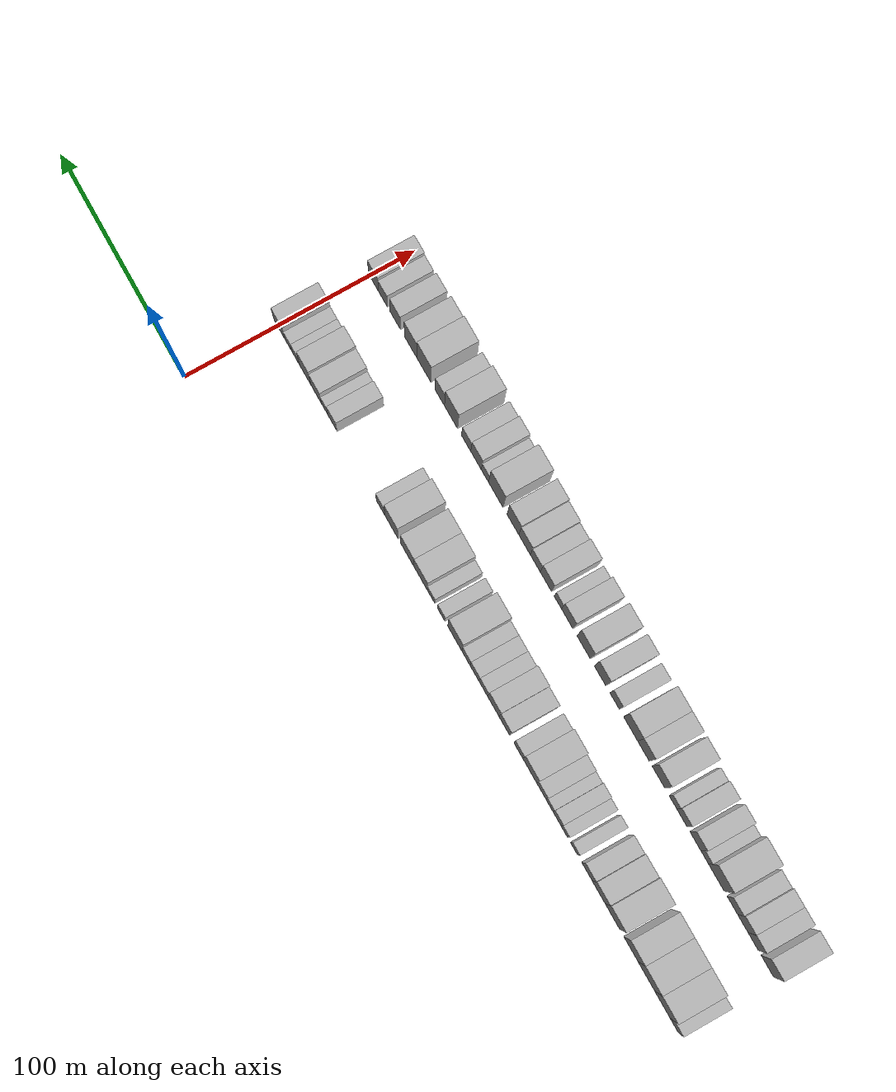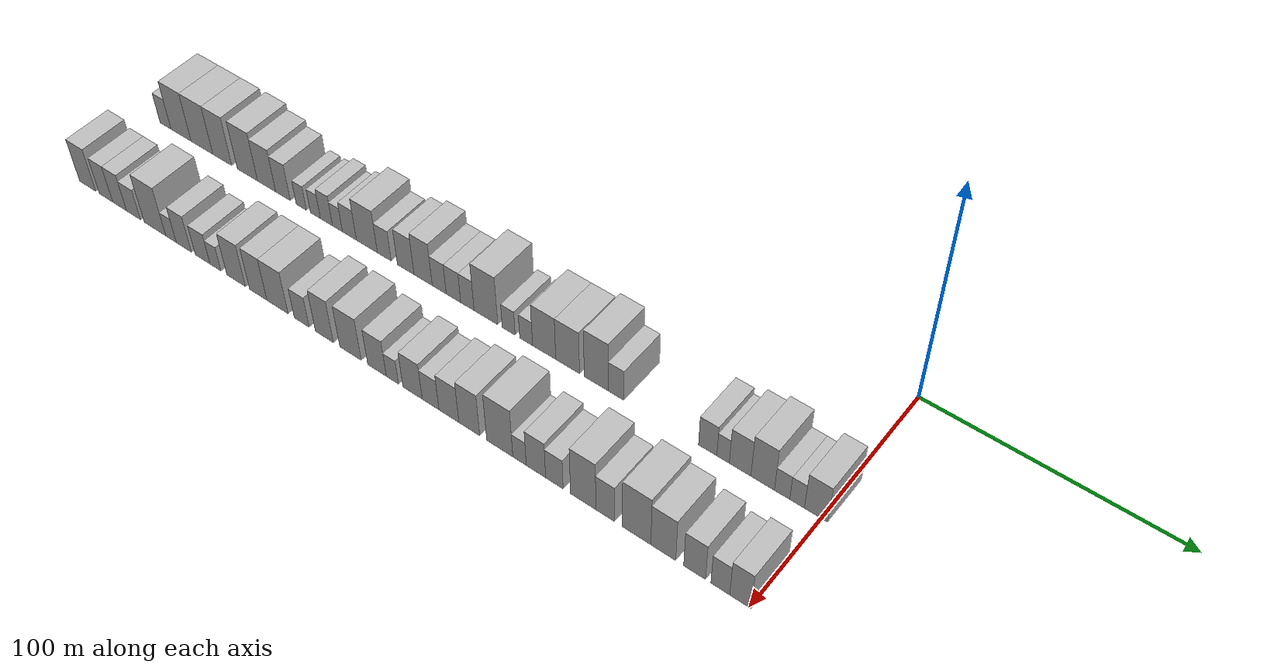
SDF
<sdf version="1.6">
 <world name="default">
  <model name="building_1">
   <static>1</static>
   <pose>50.0000 -296.9921 0 0.000000 0.000000 0.000000</pose>
   <link name="link">
    <pose>0 0 7.50 0 0 0</pose>
    <collision name="collision"><geometry><box><size>20.0000 6.0158 15.0000</size></box></geometry></collision>
    <visual name="visual">
     <cast_shadows>0</cast_shadows>
     <geometry><box><size>20.0000 6.0158 15.0000</size></box></geometry>
     <material>
      <script>
       <uri>model://HANNAS_wall/materials/scripts</uri>
       <uri>model://HANNAS_wall/materials/textures</uri>
       <name>vrc/HANNAS_wall</name>
      </script>
     </material>
    </visual>
   </link>
  </model>
  <model name="building_2">
   <static>1</static>
   <pose>50.0000 -288.4658 0 0.000000 0.000000 0.000000</pose>
   <link name="link">
    <pose>0 0 12.00 0 0 0</pose>
    <collision name="collision"><geometry><box><size>20.0000 11.0369 24.0000</size></box></geometry></collision>
    <visual name="visual">
     <cast_shadows>0</cast_shadows>
     <geometry><box><size>20.0000 11.0369 24.0000</size></box></geometry>
     <material>
      <script>
       <uri>model://HANNAS_wall/materials/scripts</uri>
       <uri>model://HANNAS_wall/materials/textures</uri>
       <name>vrc/HANNAS_wall</name>
      </script>
     </material>
    </visual>
   </link>
  </model>
  <model name="building_3">
   <static>1</static>
   <pose>50.0000 -277.0403 0 0.000000 0.000000 0.000000</pose>
   <link name="link">
    <pose>0 0 12.00 0 0 0</pose>
    <collision name="collision"><geometry><box><size>20.0000 11.8140 24.0000</size></box></geometry></collision>
    <visual name="visual">
     <cast_shadows>0</cast_shadows>
     <geometry><box><size>20.0000 11.8140 24.0000</size></box></geometry>
     <material>
      <script>
       <uri>model://HANNAS_wall/materials/scripts</uri>
       <uri>model://HANNAS_wall/materials/textures</uri>
       <name>vrc/HANNAS_wall</name>
      </script>
     </material>
    </visual>
   </link>
  </model>
  <model name="building_4">
   <static>1</static>
   <pose>50.0000 -266.0518 0 0.000000 0.000000 0.000000</pose>
   <link name="link">
    <pose>0 0 12.00 0 0 0</pose>
    <collision name="collision"><geometry><box><size>20.0000 10.1629 24.0000</size></box></geometry></collision>
    <visual name="visual">
     <cast_shadows>0</cast_shadows>
     <geometry><box><size>20.0000 10.1629 24.0000</size></box></geometry>
     <material>
      <script>
       <uri>model://HANNAS_wall/materials/scripts</uri>
       <uri>model://HANNAS_wall/materials/textures</uri>
       <name>vrc/HANNAS_wall</name>
      </script>
     </material>
    </visual>
   </link>
  </model>
  <model name="building_5">
   <static>1</static>
   <pose>50.0000 -252.6751 0 0.000000 0.000000 0.000000</pose>
   <link name="link">
    <pose>0 0 12.00 0 0 0</pose>
    <collision name="collision"><geometry><box><size>20.0000 10.5906 24.0000</size></box></geometry></collision>
    <visual name="visual">
     <cast_shadows>0</cast_shadows>
     <geometry><box><size>20.0000 10.5906 24.0000</size></box></geometry>
     <material>
      <script>
       <uri>model://HANNAS_wall/materials/scripts</uri>
       <uri>model://HANNAS_wall/materials/textures</uri>
       <name>vrc/HANNAS_wall</name>
      </script>
     </material>
    </visual>
   </link>
  </model>
  <model name="building_6">
   <static>1</static>
   <pose>50.0000 -242.6532 0 0.000000 0.000000 0.000000</pose>
   <link name="link">
    <pose>0 0 10.50 0 0 0</pose>
    <collision name="collision"><geometry><box><size>20.0000 9.4532 21.0000</size></box></geometry></collision>
    <visual name="visual">
     <cast_shadows>0</cast_shadows>
     <geometry><box><size>20.0000 9.4532 21.0000</size></box></geometry>
     <material>
      <script>
       <uri>model://HANNAS_wall/materials/scripts</uri>
       <uri>model://HANNAS_wall/materials/textures</uri>
       <name>vrc/HANNAS_wall</name>
      </script>
     </material>
    </visual>
   </link>
  </model>
  <model name="building_7">
   <static>1</static>
   <pose>50.0000 -234.1724 0 0.000000 0.000000 0.000000</pose>
   <link name="link">
    <pose>0 0 9.00 0 0 0</pose>
    <collision name="collision"><geometry><box><size>20.0000 7.5082 18.0000</size></box></geometry></collision>
    <visual name="visual">
     <cast_shadows>0</cast_shadows>
     <geometry><box><size>20.0000 7.5082 18.0000</size></box></geometry>
     <material>
      <script>
       <uri>model://HANNAS_wall/materials/scripts</uri>
       <uri>model://HANNAS_wall/materials/textures</uri>
       <name>vrc/HANNAS_wall</name>
      </script>
     </material>
    </visual>
   </link>
  </model>
  <model name="building_8">
   <static>1</static>
   <pose>50.0000 -224.8168 0 0.000000 0.000000 0.000000</pose>
   <link name="link">
    <pose>0 0 6.00 0 0 0</pose>
    <collision name="collision"><geometry><box><size>20.0000 5.2030 12.0000</size></box></geometry></collision>
    <visual name="visual">
     <cast_shadows>0</cast_shadows>
     <geometry><box><size>20.0000 5.2030 12.0000</size></box></geometry>
     <material>
      <script>
       <uri>model://HANNAS_wall/materials/scripts</uri>
       <uri>model://HANNAS_wall/materials/textures</uri>
       <name>vrc/HANNAS_wall</name>
      </script>
     </material>
    </visual>
   </link>
  </model>
  <model name="building_9">
   <static>1</static>
   <pose>50.0000 -217.7098 0 0.000000 0.000000 0.000000</pose>
   <link name="link">
    <pose>0 0 6.00 0 0 0</pose>
    <collision name="collision"><geometry><box><size>20.0000 5.0111 12.0000</size></box></geometry></collision>
    <visual name="visual">
     <cast_shadows>0</cast_shadows>
     <geometry><box><size>20.0000 5.0111 12.0000</size></box></geometry>
     <material>
      <script>
       <uri>model://HANNAS_wall/materials/scripts</uri>
       <uri>model://HANNAS_wall/materials/textures</uri>
       <name>vrc/HANNAS_wall</name>
      </script>
     </material>
    </visual>
   </link>
  </model>
  <model name="building_10">
   <static>1</static>
   <pose>50.0000 -212.1757 0 0.000000 0.000000 0.000000</pose>
   <link name="link">
    <pose>0 0 7.50 0 0 0</pose>
    <collision name="collision"><geometry><box><size>20.0000 6.0572 15.0000</size></box></geometry></collision>
    <visual name="visual">
     <cast_shadows>0</cast_shadows>
     <geometry><box><size>20.0000 6.0572 15.0000</size></box></geometry>
     <material>
      <script>
       <uri>model://HANNAS_wall/materials/scripts</uri>
       <uri>model://HANNAS_wall/materials/textures</uri>
       <name>vrc/HANNAS_wall</name>
      </script>
     </material>
    </visual>
   </link>
  </model>
  <model name="building_11">
   <static>1</static>
   <pose>50.0000 -206.6927 0 0.000000 0.000000 0.000000</pose>
   <link name="link">
    <pose>0 0 6.00 0 0 0</pose>
    <collision name="collision"><geometry><box><size>20.0000 4.9087 12.0000</size></box></geometry></collision>
    <visual name="visual">
     <cast_shadows>0</cast_shadows>
     <geometry><box><size>20.0000 4.9087 12.0000</size></box></geometry>
     <material>
      <script>
       <uri>model://HANNAS_wall/materials/scripts</uri>
       <uri>model://HANNAS_wall/materials/textures</uri>
       <name>vrc/HANNAS_wall</name>
      </script>
     </material>
    </visual>
   </link>
  </model>
  <model name="building_12">
   <static>1</static>
   <pose>50.0000 -200.7944 0 0.000000 0.000000 0.000000</pose>
   <link name="link">
    <pose>0 0 7.50 0 0 0</pose>
    <collision name="collision"><geometry><box><size>20.0000 6.8878 15.0000</size></box></geometry></collision>
    <visual name="visual">
     <cast_shadows>0</cast_shadows>
     <geometry><box><size>20.0000 6.8878 15.0000</size></box></geometry>
     <material>
      <script>
       <uri>model://HANNAS_wall/materials/scripts</uri>
       <uri>model://HANNAS_wall/materials/textures</uri>
       <name>vrc/HANNAS_wall</name>
      </script>
     </material>
    </visual>
   </link>
  </model>
  <model name="building_13">
   <static>1</static>
   <pose>50.0000 -192.2591 0 0.000000 0.000000 0.000000</pose>
   <link name="link">
    <pose>0 0 10.50 0 0 0</pose>
    <collision name="collision"><geometry><box><size>20.0000 10.1827 21.0000</size></box></geometry></collision>
    <visual name="visual">
     <cast_shadows>0</cast_shadows>
     <geometry><box><size>20.0000 10.1827 21.0000</size></box></geometry>
     <material>
      <script>
       <uri>model://HANNAS_wall/materials/scripts</uri>
       <uri>model://HANNAS_wall/materials/textures</uri>
       <name>vrc/HANNAS_wall</name>
      </script>
     </material>
    </visual>
   </link>
  </model>
  <model name="building_14">
   <static>1</static>
   <pose>50.0000 -183.8532 0 0.000000 0.000000 0.000000</pose>
   <link name="link">
    <pose>0 0 7.50 0 0 0</pose>
    <collision name="collision"><geometry><box><size>20.0000 6.6292 15.0000</size></box></geometry></collision>
    <visual name="visual">
     <cast_shadows>0</cast_shadows>
     <geometry><box><size>20.0000 6.6292 15.0000</size></box></geometry>
     <material>
      <script>
       <uri>model://HANNAS_wall/materials/scripts</uri>
       <uri>model://HANNAS_wall/materials/textures</uri>
       <name>vrc/HANNAS_wall</name>
      </script>
     </material>
    </visual>
   </link>
  </model>
  <model name="building_15">
   <static>1</static>
   <pose>50.0000 -173.6080 0 0.000000 0.000000 0.000000</pose>
   <link name="link">
    <pose>0 0 9.00 0 0 0</pose>
    <collision name="collision"><geometry><box><size>20.0000 7.8611 18.0000</size></box></geometry></collision>
    <visual name="visual">
     <cast_shadows>0</cast_shadows>
     <geometry><box><size>20.0000 7.8611 18.0000</size></box></geometry>
     <material>
      <script>
       <uri>model://HANNAS_wall/materials/scripts</uri>
       <uri>model://HANNAS_wall/materials/textures</uri>
       <name>vrc/HANNAS_wall</name>
      </script>
     </material>
    </visual>
   </link>
  </model>
  <model name="building_16">
   <static>1</static>
   <pose>50.0000 -165.4224 0 0.000000 0.000000 0.000000</pose>
   <link name="link">
    <pose>0 0 10.50 0 0 0</pose>
    <collision name="collision"><geometry><box><size>20.0000 8.5100 21.0000</size></box></geometry></collision>
    <visual name="visual">
     <cast_shadows>0</cast_shadows>
     <geometry><box><size>20.0000 8.5100 21.0000</size></box></geometry>
     <material>
      <script>
       <uri>model://HANNAS_wall/materials/scripts</uri>
       <uri>model://HANNAS_wall/materials/textures</uri>
       <name>vrc/HANNAS_wall</name>
      </script>
     </material>
    </visual>
   </link>
  </model>
  <model name="building_17">
   <static>1</static>
   <pose>50.0000 -157.9158 0 0.000000 0.000000 0.000000</pose>
   <link name="link">
    <pose>0 0 7.50 0 0 0</pose>
    <collision name="collision"><geometry><box><size>20.0000 6.5033 15.0000</size></box></geometry></collision>
    <visual name="visual">
     <cast_shadows>0</cast_shadows>
     <geometry><box><size>20.0000 6.5033 15.0000</size></box></geometry>
     <material>
      <script>
       <uri>model://HANNAS_wall/materials/scripts</uri>
       <uri>model://HANNAS_wall/materials/textures</uri>
       <name>vrc/HANNAS_wall</name>
      </script>
     </material>
    </visual>
   </link>
  </model>
  <model name="building_18">
   <static>1</static>
   <pose>50.0000 -151.3319 0 0.000000 0.000000 0.000000</pose>
   <link name="link">
    <pose>0 0 7.50 0 0 0</pose>
    <collision name="collision"><geometry><box><size>20.0000 6.6644 15.0000</size></box></geometry></collision>
    <visual name="visual">
     <cast_shadows>0</cast_shadows>
     <geometry><box><size>20.0000 6.6644 15.0000</size></box></geometry>
     <material>
      <script>
       <uri>model://HANNAS_wall/materials/scripts</uri>
       <uri>model://HANNAS_wall/materials/textures</uri>
       <name>vrc/HANNAS_wall</name>
      </script>
     </material>
    </visual>
   </link>
  </model>
  <model name="building_19">
   <static>1</static>
   <pose>50.0000 -144.9612 0 0.000000 0.000000 0.000000</pose>
   <link name="link">
    <pose>0 0 7.50 0 0 0</pose>
    <collision name="collision"><geometry><box><size>20.0000 6.0769 15.0000</size></box></geometry></collision>
    <visual name="visual">
     <cast_shadows>0</cast_shadows>
     <geometry><box><size>20.0000 6.0769 15.0000</size></box></geometry>
     <material>
      <script>
       <uri>model://HANNAS_wall/materials/scripts</uri>
       <uri>model://HANNAS_wall/materials/textures</uri>
       <name>vrc/HANNAS_wall</name>
      </script>
     </material>
    </visual>
   </link>
  </model>
  <model name="building_20">
   <static>1</static>
   <pose>50.0000 -136.5913 0 0.000000 0.000000 0.000000</pose>
   <link name="link">
    <pose>0 0 12.00 0 0 0</pose>
    <collision name="collision"><geometry><box><size>20.0000 10.6628 24.0000</size></box></geometry></collision>
    <visual name="visual">
     <cast_shadows>0</cast_shadows>
     <geometry><box><size>20.0000 10.6628 24.0000</size></box></geometry>
     <material>
      <script>
       <uri>model://HANNAS_wall/materials/scripts</uri>
       <uri>model://HANNAS_wall/materials/textures</uri>
       <name>vrc/HANNAS_wall</name>
      </script>
     </material>
    </visual>
   </link>
  </model>
  <model name="building_21">
   <static>1</static>
   <pose>50.0000 -126.3974 0 0.000000 0.000000 0.000000</pose>
   <link name="link">
    <pose>0 0 6.00 0 0 0</pose>
    <collision name="collision"><geometry><box><size>20.0000 5.7250 12.0000</size></box></geometry></collision>
    <visual name="visual">
     <cast_shadows>0</cast_shadows>
     <geometry><box><size>20.0000 5.7250 12.0000</size></box></geometry>
     <material>
      <script>
       <uri>model://HANNAS_wall/materials/scripts</uri>
       <uri>model://HANNAS_wall/materials/textures</uri>
       <name>vrc/HANNAS_wall</name>
      </script>
     </material>
    </visual>
   </link>
  </model>
  <model name="building_22">
   <static>1</static>
   <pose>50.0000 -118.7112 0 0.000000 0.000000 0.000000</pose>
   <link name="link">
    <pose>0 0 6.00 0 0 0</pose>
    <collision name="collision"><geometry><box><size>20.0000 5.6475 12.0000</size></box></geometry></collision>
    <visual name="visual">
     <cast_shadows>0</cast_shadows>
     <geometry><box><size>20.0000 5.6475 12.0000</size></box></geometry>
     <material>
      <script>
       <uri>model://HANNAS_wall/materials/scripts</uri>
       <uri>model://HANNAS_wall/materials/textures</uri>
       <name>vrc/HANNAS_wall</name>
      </script>
     </material>
    </visual>
   </link>
  </model>
  <model name="building_23">
   <static>1</static>
   <pose>50.0000 -110.8488 0 0.000000 0.000000 0.000000</pose>
   <link name="link">
    <pose>0 0 10.50 0 0 0</pose>
    <collision name="collision"><geometry><box><size>20.0000 10.0774 21.0000</size></box></geometry></collision>
    <visual name="visual">
     <cast_shadows>0</cast_shadows>
     <geometry><box><size>20.0000 10.0774 21.0000</size></box></geometry>
     <material>
      <script>
       <uri>model://HANNAS_wall/materials/scripts</uri>
       <uri>model://HANNAS_wall/materials/textures</uri>
       <name>vrc/HANNAS_wall</name>
      </script>
     </material>
    </visual>
   </link>
  </model>
  <model name="building_24">
   <static>1</static>
   <pose>50.0000 -100.7308 0 0.000000 0.000000 0.000000</pose>
   <link name="link">
    <pose>0 0 10.50 0 0 0</pose>
    <collision name="collision"><geometry><box><size>20.0000 10.1586 21.0000</size></box></geometry></collision>
    <visual name="visual">
     <cast_shadows>0</cast_shadows>
     <geometry><box><size>20.0000 10.1586 21.0000</size></box></geometry>
     <material>
      <script>
       <uri>model://HANNAS_wall/materials/scripts</uri>
       <uri>model://HANNAS_wall/materials/textures</uri>
       <name>vrc/HANNAS_wall</name>
      </script>
     </material>
    </visual>
   </link>
  </model>
  <model name="building_25">
   <static>1</static>
   <pose>50.0000 -88.6149 0 0.000000 0.000000 0.000000</pose>
   <link name="link">
    <pose>0 0 12.00 0 0 0</pose>
    <collision name="collision"><geometry><box><size>20.0000 10.0731 24.0000</size></box></geometry></collision>
    <visual name="visual">
     <cast_shadows>0</cast_shadows>
     <geometry><box><size>20.0000 10.0731 24.0000</size></box></geometry>
     <material>
      <script>
       <uri>model://HANNAS_wall/materials/scripts</uri>
       <uri>model://HANNAS_wall/materials/textures</uri>
       <name>vrc/HANNAS_wall</name>
      </script>
     </material>
    </visual>
   </link>
  </model>
  <model name="building_26">
   <static>1</static>
   <pose>50.0000 -80.3143 0 0.000000 0.000000 0.000000</pose>
   <link name="link">
    <pose>0 0 7.50 0 0 0</pose>
    <collision name="collision"><geometry><box><size>20.0000 6.5280 15.0000</size></box></geometry></collision>
    <visual name="visual">
     <cast_shadows>0</cast_shadows>
     <geometry><box><size>20.0000 6.5280 15.0000</size></box></geometry>
     <material>
      <script>
       <uri>model://HANNAS_wall/materials/scripts</uri>
       <uri>model://HANNAS_wall/materials/textures</uri>
       <name>vrc/HANNAS_wall</name>
      </script>
     </material>
    </visual>
   </link>
  </model>
  <model name="building_27">
   <static>1</static>
   <pose>50.0000 -43.2637 0 0.000000 0.000000 0.000000</pose>
   <link name="link">
    <pose>0 0 7.50 0 0 0</pose>
    <collision name="collision"><geometry><box><size>20.0000 7.1911 15.0000</size></box></geometry></collision>
    <visual name="visual">
     <cast_shadows>0</cast_shadows>
     <geometry><box><size>20.0000 7.1911 15.0000</size></box></geometry>
     <material>
      <script>
       <uri>model://HANNAS_wall/materials/scripts</uri>
       <uri>model://HANNAS_wall/materials/textures</uri>
       <name>vrc/HANNAS_wall</name>
      </script>
     </material>
    </visual>
   </link>
  </model>
  <model name="building_28">
   <static>1</static>
   <pose>50.0000 -37.2475 0 0.000000 0.000000 0.000000</pose>
   <link name="link">
    <pose>0 0 6.00 0 0 0</pose>
    <collision name="collision"><geometry><box><size>20.0000 4.8413 12.0000</size></box></geometry></collision>
    <visual name="visual">
     <cast_shadows>0</cast_shadows>
     <geometry><box><size>20.0000 4.8413 12.0000</size></box></geometry>
     <material>
      <script>
       <uri>model://HANNAS_wall/materials/scripts</uri>
       <uri>model://HANNAS_wall/materials/textures</uri>
       <name>vrc/HANNAS_wall</name>
      </script>
     </material>
    </visual>
   </link>
  </model>
  <model name="building_29">
   <static>1</static>
   <pose>50.0000 -30.6591 0 0.000000 0.000000 0.000000</pose>
   <link name="link">
    <pose>0 0 9.00 0 0 0</pose>
    <collision name="collision"><geometry><box><size>20.0000 8.3355 18.0000</size></box></geometry></collision>
    <visual name="visual">
     <cast_shadows>0</cast_shadows>
     <geometry><box><size>20.0000 8.3355 18.0000</size></box></geometry>
     <material>
      <script>
       <uri>model://HANNAS_wall/materials/scripts</uri>
       <uri>model://HANNAS_wall/materials/textures</uri>
       <name>vrc/HANNAS_wall</name>
      </script>
     </material>
    </visual>
   </link>
  </model>
  <model name="building_30">
   <static>1</static>
   <pose>50.0000 -22.0079 0 0.000000 0.000000 0.000000</pose>
   <link name="link">
    <pose>0 0 10.50 0 0 0</pose>
    <collision name="collision"><geometry><box><size>20.0000 8.9668 21.0000</size></box></geometry></collision>
    <visual name="visual">
     <cast_shadows>0</cast_shadows>
     <geometry><box><size>20.0000 8.9668 21.0000</size></box></geometry>
     <material>
      <script>
       <uri>model://HANNAS_wall/materials/scripts</uri>
       <uri>model://HANNAS_wall/materials/textures</uri>
       <name>vrc/HANNAS_wall</name>
      </script>
     </material>
    </visual>
   </link>
  </model>
  <model name="building_31">
   <static>1</static>
   <pose>50.0000 -14.6391 0 0.000000 0.000000 0.000000</pose>
   <link name="link">
    <pose>0 0 6.00 0 0 0</pose>
    <collision name="collision"><geometry><box><size>20.0000 5.7708 12.0000</size></box></geometry></collision>
    <visual name="visual">
     <cast_shadows>0</cast_shadows>
     <geometry><box><size>20.0000 5.7708 12.0000</size></box></geometry>
     <material>
      <script>
       <uri>model://HANNAS_wall/materials/scripts</uri>
       <uri>model://HANNAS_wall/materials/textures</uri>
       <name>vrc/HANNAS_wall</name>
      </script>
     </material>
    </visual>
   </link>
  </model>
  <model name="building_32">
   <static>1</static>
   <pose>50.0000 -9.0255 0 0.000000 0.000000 0.000000</pose>
   <link name="link">
    <pose>0 0 6.00 0 0 0</pose>
    <collision name="collision"><geometry><box><size>20.0000 5.4564 12.0000</size></box></geometry></collision>
    <visual name="visual">
     <cast_shadows>0</cast_shadows>
     <geometry><box><size>20.0000 5.4564 12.0000</size></box></geometry>
     <material>
      <script>
       <uri>model://HANNAS_wall/materials/scripts</uri>
       <uri>model://HANNAS_wall/materials/textures</uri>
       <name>vrc/HANNAS_wall</name>
      </script>
     </material>
    </visual>
   </link>
  </model>
  <model name="building_33">
   <static>1</static>
   <pose>50.0000 -1.9753 0 0.000000 0.000000 0.000000</pose>
   <link name="link">
    <pose>0 0 9.00 0 0 0</pose>
    <collision name="collision"><geometry><box><size>20.0000 8.6439 18.0000</size></box></geometry></collision>
    <visual name="visual">
     <cast_shadows>0</cast_shadows>
     <geometry><box><size>20.0000 8.6439 18.0000</size></box></geometry>
     <material>
      <script>
       <uri>model://HANNAS_wall/materials/scripts</uri>
       <uri>model://HANNAS_wall/materials/textures</uri>
       <name>vrc/HANNAS_wall</name>
      </script>
     </material>
    </visual>
   </link>
  </model>
  <model name="building_65">
   <static>1</static>
   <pose>90.0000 -295.5575 0 0.000000 0.000000 0.000000</pose>
   <link name="link">
    <pose>0 0 10.50 0 0 0</pose>
    <collision name="collision"><geometry><box><size>20.0000 8.8849 21.0000</size></box></geometry></collision>
    <visual name="visual">
     <cast_shadows>0</cast_shadows>
     <geometry><box><size>20.0000 8.8849 21.0000</size></box></geometry>
     <material>
      <script>
       <uri>model://HANNAS_wall/materials/scripts</uri>
       <uri>model://HANNAS_wall/materials/textures</uri>
       <name>vrc/HANNAS_wall</name>
      </script>
     </material>
    </visual>
   </link>
  </model>
  <model name="building_66">
   <static>1</static>
   <pose>90.0000 -285.4846 0 0.000000 0.000000 0.000000</pose>
   <link name="link">
    <pose>0 0 9.00 0 0 0</pose>
    <collision name="collision"><geometry><box><size>20.0000 7.2610 18.0000</size></box></geometry></collision>
    <visual name="visual">
     <cast_shadows>0</cast_shadows>
     <geometry><box><size>20.0000 7.2610 18.0000</size></box></geometry>
     <material>
      <script>
       <uri>model://HANNAS_wall/materials/scripts</uri>
       <uri>model://HANNAS_wall/materials/textures</uri>
       <name>vrc/HANNAS_wall</name>
      </script>
     </material>
    </visual>
   </link>
  </model>
  <model name="building_67">
   <static>1</static>
   <pose>90.0000 -278.0890 0 0.000000 0.000000 0.000000</pose>
   <link name="link">
    <pose>0 0 9.00 0 0 0</pose>
    <collision name="collision"><geometry><box><size>20.0000 7.5300 18.0000</size></box></geometry></collision>
    <visual name="visual">
     <cast_shadows>0</cast_shadows>
     <geometry><box><size>20.0000 7.5300 18.0000</size></box></geometry>
     <material>
      <script>
       <uri>model://HANNAS_wall/materials/scripts</uri>
       <uri>model://HANNAS_wall/materials/textures</uri>
       <name>vrc/HANNAS_wall</name>
      </script>
     </material>
    </visual>
   </link>
  </model>
  <model name="building_68">
   <static>1</static>
   <pose>90.0000 -270.6045 0 0.000000 0.000000 0.000000</pose>
   <link name="link">
    <pose>0 0 7.50 0 0 0</pose>
    <collision name="collision"><geometry><box><size>20.0000 7.4390 15.0000</size></box></geometry></collision>
    <visual name="visual">
     <cast_shadows>0</cast_shadows>
     <geometry><box><size>20.0000 7.4390 15.0000</size></box></geometry>
     <material>
      <script>
       <uri>model://HANNAS_wall/materials/scripts</uri>
       <uri>model://HANNAS_wall/materials/textures</uri>
       <name>vrc/HANNAS_wall</name>
      </script>
     </material>
    </visual>
   </link>
  </model>
  <model name="building_69">
   <static>1</static>
   <pose>90.0000 -259.1999 0 0.000000 0.000000 0.000000</pose>
   <link name="link">
    <pose>0 0 12.00 0 0 0</pose>
    <collision name="collision"><geometry><box><size>20.0000 11.3703 24.0000</size></box></geometry></collision>
    <visual name="visual">
     <cast_shadows>0</cast_shadows>
     <geometry><box><size>20.0000 11.3703 24.0000</size></box></geometry>
     <material>
      <script>
       <uri>model://HANNAS_wall/materials/scripts</uri>
       <uri>model://HANNAS_wall/materials/textures</uri>
       <name>vrc/HANNAS_wall</name>
      </script>
     </material>
    </visual>
   </link>
  </model>
  <model name="building_70">
   <static>1</static>
   <pose>90.0000 -250.7937 0 0.000000 0.000000 0.000000</pose>
   <link name="link">
    <pose>0 0 6.00 0 0 0</pose>
    <collision name="collision"><geometry><box><size>20.0000 5.4422 12.0000</size></box></geometry></collision>
    <visual name="visual">
     <cast_shadows>0</cast_shadows>
     <geometry><box><size>20.0000 5.4422 12.0000</size></box></geometry>
     <material>
      <script>
       <uri>model://HANNAS_wall/materials/scripts</uri>
       <uri>model://HANNAS_wall/materials/textures</uri>
       <name>vrc/HANNAS_wall</name>
      </script>
     </material>
    </visual>
   </link>
  </model>
  <model name="building_71">
   <static>1</static>
   <pose>90.0000 -244.1527 0 0.000000 0.000000 0.000000</pose>
   <link name="link">
    <pose>0 0 9.00 0 0 0</pose>
    <collision name="collision"><geometry><box><size>20.0000 7.8398 18.0000</size></box></geometry></collision>
    <visual name="visual">
     <cast_shadows>0</cast_shadows>
     <geometry><box><size>20.0000 7.8398 18.0000</size></box></geometry>
     <material>
      <script>
       <uri>model://HANNAS_wall/materials/scripts</uri>
       <uri>model://HANNAS_wall/materials/textures</uri>
       <name>vrc/HANNAS_wall</name>
      </script>
     </material>
    </visual>
   </link>
  </model>
  <model name="building_72">
   <static>1</static>
   <pose>90.0000 -234.4829 0 0.000000 0.000000 0.000000</pose>
   <link name="link">
    <pose>0 0 7.50 0 0 0</pose>
    <collision name="collision"><geometry><box><size>20.0000 7.4998 15.0000</size></box></geometry></collision>
    <visual name="visual">
     <cast_shadows>0</cast_shadows>
     <geometry><box><size>20.0000 7.4998 15.0000</size></box></geometry>
     <material>
      <script>
       <uri>model://HANNAS_wall/materials/scripts</uri>
       <uri>model://HANNAS_wall/materials/textures</uri>
       <name>vrc/HANNAS_wall</name>
      </script>
     </material>
    </visual>
   </link>
  </model>
  <model name="building_73">
   <static>1</static>
   <pose>90.0000 -227.9857 0 0.000000 0.000000 0.000000</pose>
   <link name="link">
    <pose>0 0 6.00 0 0 0</pose>
    <collision name="collision"><geometry><box><size>20.0000 5.4946 12.0000</size></box></geometry></collision>
    <visual name="visual">
     <cast_shadows>0</cast_shadows>
     <geometry><box><size>20.0000 5.4946 12.0000</size></box></geometry>
     <material>
      <script>
       <uri>model://HANNAS_wall/materials/scripts</uri>
       <uri>model://HANNAS_wall/materials/textures</uri>
       <name>vrc/HANNAS_wall</name>
      </script>
     </material>
    </visual>
   </link>
  </model>
  <model name="building_74">
   <static>1</static>
   <pose>90.0000 -217.5837 0 0.000000 0.000000 0.000000</pose>
   <link name="link">
    <pose>0 0 10.50 0 0 0</pose>
    <collision name="collision"><geometry><box><size>20.0000 9.3094 21.0000</size></box></geometry></collision>
    <visual name="visual">
     <cast_shadows>0</cast_shadows>
     <geometry><box><size>20.0000 9.3094 21.0000</size></box></geometry>
     <material>
      <script>
       <uri>model://HANNAS_wall/materials/scripts</uri>
       <uri>model://HANNAS_wall/materials/textures</uri>
       <name>vrc/HANNAS_wall</name>
      </script>
     </material>
    </visual>
   </link>
  </model>
  <model name="building_75">
   <static>1</static>
   <pose>90.0000 -206.6915 0 0.000000 0.000000 0.000000</pose>
   <link name="link">
    <pose>0 0 10.50 0 0 0</pose>
    <collision name="collision"><geometry><box><size>20.0000 8.4749 21.0000</size></box></geometry></collision>
    <visual name="visual">
     <cast_shadows>0</cast_shadows>
     <geometry><box><size>20.0000 8.4749 21.0000</size></box></geometry>
     <material>
      <script>
       <uri>model://HANNAS_wall/materials/scripts</uri>
       <uri>model://HANNAS_wall/materials/textures</uri>
       <name>vrc/HANNAS_wall</name>
      </script>
     </material>
    </visual>
   </link>
  </model>
  <model name="building_76">
   <static>1</static>
   <pose>90.0000 -197.3123 0 0.000000 0.000000 0.000000</pose>
   <link name="link">
    <pose>0 0 10.50 0 0 0</pose>
    <collision name="collision"><geometry><box><size>20.0000 10.2836 21.0000</size></box></geometry></collision>
    <visual name="visual">
     <cast_shadows>0</cast_shadows>
     <geometry><box><size>20.0000 10.2836 21.0000</size></box></geometry>
     <material>
      <script>
       <uri>model://HANNAS_wall/materials/scripts</uri>
       <uri>model://HANNAS_wall/materials/textures</uri>
       <name>vrc/HANNAS_wall</name>
      </script>
     </material>
    </visual>
   </link>
  </model>
  <model name="building_77">
   <static>1</static>
   <pose>90.0000 -185.6496 0 0.000000 0.000000 0.000000</pose>
   <link name="link">
    <pose>0 0 7.50 0 0 0</pose>
    <collision name="collision"><geometry><box><size>20.0000 7.0418 15.0000</size></box></geometry></collision>
    <visual name="visual">
     <cast_shadows>0</cast_shadows>
     <geometry><box><size>20.0000 7.0418 15.0000</size></box></geometry>
     <material>
      <script>
       <uri>model://HANNAS_wall/materials/scripts</uri>
       <uri>model://HANNAS_wall/materials/textures</uri>
       <name>vrc/HANNAS_wall</name>
      </script>
     </material>
    </visual>
   </link>
  </model>
  <model name="building_78">
   <static>1</static>
   <pose>90.0000 -174.9242 0 0.000000 0.000000 0.000000</pose>
   <link name="link">
    <pose>0 0 10.50 0 0 0</pose>
    <collision name="collision"><geometry><box><size>20.0000 8.4088 21.0000</size></box></geometry></collision>
    <visual name="visual">
     <cast_shadows>0</cast_shadows>
     <geometry><box><size>20.0000 8.4088 21.0000</size></box></geometry>
     <material>
      <script>
       <uri>model://HANNAS_wall/materials/scripts</uri>
       <uri>model://HANNAS_wall/materials/textures</uri>
       <name>vrc/HANNAS_wall</name>
      </script>
     </material>
    </visual>
   </link>
  </model>
  <model name="building_79">
   <static>1</static>
   <pose>90.0000 -162.7764 0 0.000000 0.000000 0.000000</pose>
   <link name="link">
    <pose>0 0 10.50 0 0 0</pose>
    <collision name="collision"><geometry><box><size>20.0000 9.8868 21.0000</size></box></geometry></collision>
    <visual name="visual">
     <cast_shadows>0</cast_shadows>
     <geometry><box><size>20.0000 9.8868 21.0000</size></box></geometry>
     <material>
      <script>
       <uri>model://HANNAS_wall/materials/scripts</uri>
       <uri>model://HANNAS_wall/materials/textures</uri>
       <name>vrc/HANNAS_wall</name>
      </script>
     </material>
    </visual>
   </link>
  </model>
  <model name="building_80">
   <static>1</static>
   <pose>90.0000 -150.6316 0 0.000000 0.000000 0.000000</pose>
   <link name="link">
    <pose>0 0 9.00 0 0 0</pose>
    <collision name="collision"><geometry><box><size>20.0000 8.4029 18.0000</size></box></geometry></collision>
    <visual name="visual">
     <cast_shadows>0</cast_shadows>
     <geometry><box><size>20.0000 8.4029 18.0000</size></box></geometry>
     <material>
      <script>
       <uri>model://HANNAS_wall/materials/scripts</uri>
       <uri>model://HANNAS_wall/materials/textures</uri>
       <name>vrc/HANNAS_wall</name>
      </script>
     </material>
    </visual>
   </link>
  </model>
  <model name="building_81">
   <static>1</static>
   <pose>90.0000 -143.6912 0 0.000000 0.000000 0.000000</pose>
   <link name="link">
    <pose>0 0 6.00 0 0 0</pose>
    <collision name="collision"><geometry><box><size>20.0000 5.4779 12.0000</size></box></geometry></collision>
    <visual name="visual">
     <cast_shadows>0</cast_shadows>
     <geometry><box><size>20.0000 5.4779 12.0000</size></box></geometry>
     <material>
      <script>
       <uri>model://HANNAS_wall/materials/scripts</uri>
       <uri>model://HANNAS_wall/materials/textures</uri>
       <name>vrc/HANNAS_wall</name>
      </script>
     </material>
    </visual>
   </link>
  </model>
  <model name="building_82">
   <static>1</static>
   <pose>90.0000 -134.6924 0 0.000000 0.000000 0.000000</pose>
   <link name="link">
    <pose>0 0 9.00 0 0 0</pose>
    <collision name="collision"><geometry><box><size>20.0000 8.5197 18.0000</size></box></geometry></collision>
    <visual name="visual">
     <cast_shadows>0</cast_shadows>
     <geometry><box><size>20.0000 8.5197 18.0000</size></box></geometry>
     <material>
      <script>
       <uri>model://HANNAS_wall/materials/scripts</uri>
       <uri>model://HANNAS_wall/materials/textures</uri>
       <name>vrc/HANNAS_wall</name>
      </script>
     </material>
    </visual>
   </link>
  </model>
  <model name="building_83">
   <static>1</static>
   <pose>90.0000 -126.7604 0 0.000000 0.000000 0.000000</pose>
   <link name="link">
    <pose>0 0 7.50 0 0 0</pose>
    <collision name="collision"><geometry><box><size>20.0000 7.3443 15.0000</size></box></geometry></collision>
    <visual name="visual">
     <cast_shadows>0</cast_shadows>
     <geometry><box><size>20.0000 7.3443 15.0000</size></box></geometry>
     <material>
      <script>
       <uri>model://HANNAS_wall/materials/scripts</uri>
       <uri>model://HANNAS_wall/materials/textures</uri>
       <name>vrc/HANNAS_wall</name>
      </script>
     </material>
    </visual>
   </link>
  </model>
  <model name="building_84">
   <static>1</static>
   <pose>90.0000 -118.7728 0 0.000000 0.000000 0.000000</pose>
   <link name="link">
    <pose>0 0 9.00 0 0 0</pose>
    <collision name="collision"><geometry><box><size>20.0000 8.6309 18.0000</size></box></geometry></collision>
    <visual name="visual">
     <cast_shadows>0</cast_shadows>
     <geometry><box><size>20.0000 8.6309 18.0000</size></box></geometry>
     <material>
      <script>
       <uri>model://HANNAS_wall/materials/scripts</uri>
       <uri>model://HANNAS_wall/materials/textures</uri>
       <name>vrc/HANNAS_wall</name>
      </script>
     </material>
    </visual>
   </link>
  </model>
  <model name="building_85">
   <static>1</static>
   <pose>90.0000 -110.0141 0 0.000000 0.000000 0.000000</pose>
   <link name="link">
    <pose>0 0 10.50 0 0 0</pose>
    <collision name="collision"><geometry><box><size>20.0000 8.8865 21.0000</size></box></geometry></collision>
    <visual name="visual">
     <cast_shadows>0</cast_shadows>
     <geometry><box><size>20.0000 8.8865 21.0000</size></box></geometry>
     <material>
      <script>
       <uri>model://HANNAS_wall/materials/scripts</uri>
       <uri>model://HANNAS_wall/materials/textures</uri>
       <name>vrc/HANNAS_wall</name>
      </script>
     </material>
    </visual>
   </link>
  </model>
  <model name="building_86">
   <static>1</static>
   <pose>90.0000 -97.1039 0 0.000000 0.000000 0.000000</pose>
   <link name="link">
    <pose>0 0 12.00 0 0 0</pose>
    <collision name="collision"><geometry><box><size>20.0000 10.9340 24.0000</size></box></geometry></collision>
    <visual name="visual">
     <cast_shadows>0</cast_shadows>
     <geometry><box><size>20.0000 10.9340 24.0000</size></box></geometry>
     <material>
      <script>
       <uri>model://HANNAS_wall/materials/scripts</uri>
       <uri>model://HANNAS_wall/materials/textures</uri>
       <name>vrc/HANNAS_wall</name>
      </script>
     </material>
    </visual>
   </link>
  </model>
  <model name="building_87">
   <static>1</static>
   <pose>90.0000 -88.8692 0 0.000000 0.000000 0.000000</pose>
   <link name="link">
    <pose>0 0 6.00 0 0 0</pose>
    <collision name="collision"><geometry><box><size>20.0000 5.5353 12.0000</size></box></geometry></collision>
    <visual name="visual">
     <cast_shadows>0</cast_shadows>
     <geometry><box><size>20.0000 5.5353 12.0000</size></box></geometry>
     <material>
      <script>
       <uri>model://HANNAS_wall/materials/scripts</uri>
       <uri>model://HANNAS_wall/materials/textures</uri>
       <name>vrc/HANNAS_wall</name>
      </script>
     </material>
    </visual>
   </link>
  </model>
  <model name="building_88">
   <static>1</static>
   <pose>90.0000 -82.1230 0 0.000000 0.000000 0.000000</pose>
   <link name="link">
    <pose>0 0 9.00 0 0 0</pose>
    <collision name="collision"><geometry><box><size>20.0000 7.9572 18.0000</size></box></geometry></collision>
    <visual name="visual">
     <cast_shadows>0</cast_shadows>
     <geometry><box><size>20.0000 7.9572 18.0000</size></box></geometry>
     <material>
      <script>
       <uri>model://HANNAS_wall/materials/scripts</uri>
       <uri>model://HANNAS_wall/materials/textures</uri>
       <name>vrc/HANNAS_wall</name>
      </script>
     </material>
    </visual>
   </link>
  </model>
  <model name="building_89">
   <static>1</static>
   <pose>90.0000 -74.6112 0 0.000000 0.000000 0.000000</pose>
   <link name="link">
    <pose>0 0 7.50 0 0 0</pose>
    <collision name="collision"><geometry><box><size>20.0000 7.0663 15.0000</size></box></geometry></collision>
    <visual name="visual">
     <cast_shadows>0</cast_shadows>
     <geometry><box><size>20.0000 7.0663 15.0000</size></box></geometry>
     <material>
      <script>
       <uri>model://HANNAS_wall/materials/scripts</uri>
       <uri>model://HANNAS_wall/materials/textures</uri>
       <name>vrc/HANNAS_wall</name>
      </script>
     </material>
    </visual>
   </link>
  </model>
  <model name="building_90">
   <static>1</static>
   <pose>90.0000 -63.0447 0 0.000000 0.000000 0.000000</pose>
   <link name="link">
    <pose>0 0 12.00 0 0 0</pose>
    <collision name="collision"><geometry><box><size>20.0000 10.0668 24.0000</size></box></geometry></collision>
    <visual name="visual">
     <cast_shadows>0</cast_shadows>
     <geometry><box><size>20.0000 10.0668 24.0000</size></box></geometry>
     <material>
      <script>
       <uri>model://HANNAS_wall/materials/scripts</uri>
       <uri>model://HANNAS_wall/materials/textures</uri>
       <name>vrc/HANNAS_wall</name>
      </script>
     </material>
    </visual>
   </link>
  </model>
  <model name="building_91">
   <static>1</static>
   <pose>90.0000 -54.3347 0 0.000000 0.000000 0.000000</pose>
   <link name="link">
    <pose>0 0 9.00 0 0 0</pose>
    <collision name="collision"><geometry><box><size>20.0000 7.3531 18.0000</size></box></geometry></collision>
    <visual name="visual">
     <cast_shadows>0</cast_shadows>
     <geometry><box><size>20.0000 7.3531 18.0000</size></box></geometry>
     <material>
      <script>
       <uri>model://HANNAS_wall/materials/scripts</uri>
       <uri>model://HANNAS_wall/materials/textures</uri>
       <name>vrc/HANNAS_wall</name>
      </script>
     </material>
    </visual>
   </link>
  </model>
  <model name="building_92">
   <static>1</static>
   <pose>90.0000 -42.1600 0 0.000000 0.000000 0.000000</pose>
   <link name="link">
    <pose>0 0 12.00 0 0 0</pose>
    <collision name="collision"><geometry><box><size>20.0000 10.9962 24.0000</size></box></geometry></collision>
    <visual name="visual">
     <cast_shadows>0</cast_shadows>
     <geometry><box><size>20.0000 10.9962 24.0000</size></box></geometry>
     <material>
      <script>
       <uri>model://HANNAS_wall/materials/scripts</uri>
       <uri>model://HANNAS_wall/materials/textures</uri>
       <name>vrc/HANNAS_wall</name>
      </script>
     </material>
    </visual>
   </link>
  </model>
  <model name="building_93">
   <static>1</static>
   <pose>90.0000 -31.9244 0 0.000000 0.000000 0.000000</pose>
   <link name="link">
    <pose>0 0 10.50 0 0 0</pose>
    <collision name="collision"><geometry><box><size>20.0000 9.4751 21.0000</size></box></geometry></collision>
    <visual name="visual">
     <cast_shadows>0</cast_shadows>
     <geometry><box><size>20.0000 9.4751 21.0000</size></box></geometry>
     <material>
      <script>
       <uri>model://HANNAS_wall/materials/scripts</uri>
       <uri>model://HANNAS_wall/materials/textures</uri>
       <name>vrc/HANNAS_wall</name>
      </script>
     </material>
    </visual>
   </link>
  </model>
  <model name="building_94">
   <static>1</static>
   <pose>90.0000 -20.1261 0 0.000000 0.000000 0.000000</pose>
   <link name="link">
    <pose>0 0 9.00 0 0 0</pose>
    <collision name="collision"><geometry><box><size>20.0000 8.1213 18.0000</size></box></geometry></collision>
    <visual name="visual">
     <cast_shadows>0</cast_shadows>
     <geometry><box><size>20.0000 8.1213 18.0000</size></box></geometry>
     <material>
      <script>
       <uri>model://HANNAS_wall/materials/scripts</uri>
       <uri>model://HANNAS_wall/materials/textures</uri>
       <name>vrc/HANNAS_wall</name>
      </script>
     </material>
    </visual>
   </link>
  </model>
  <model name="building_95">
   <static>1</static>
   <pose>90.0000 -10.6147 0 0.000000 0.000000 0.000000</pose>
   <link name="link">
    <pose>0 0 7.50 0 0 0</pose>
    <collision name="collision"><geometry><box><size>20.0000 6.9015 15.0000</size></box></geometry></collision>
    <visual name="visual">
     <cast_shadows>0</cast_shadows>
     <geometry><box><size>20.0000 6.9015 15.0000</size></box></geometry>
     <material>
      <script>
       <uri>model://HANNAS_wall/materials/scripts</uri>
       <uri>model://HANNAS_wall/materials/textures</uri>
       <name>vrc/HANNAS_wall</name>
      </script>
     </material>
    </visual>
   </link>
  </model>
  <model name="building_96">
   <static>1</static>
   <pose>90.0000 -3.2669 0 0.000000 0.000000 0.000000</pose>
   <link name="link">
    <pose>0 0 9.00 0 0 0</pose>
    <collision name="collision"><geometry><box><size>20.0000 7.7943 18.0000</size></box></geometry></collision>
    <visual name="visual">
     <cast_shadows>0</cast_shadows>
     <geometry><box><size>20.0000 7.7943 18.0000</size></box></geometry>
     <material>
      <script>
       <uri>model://HANNAS_wall/materials/scripts</uri>
       <uri>model://HANNAS_wall/materials/textures</uri>
       <name>vrc/HANNAS_wall</name>
      </script>
     </material>
    </visual>
   </link>
  </model>
 </world>
</sdf>
